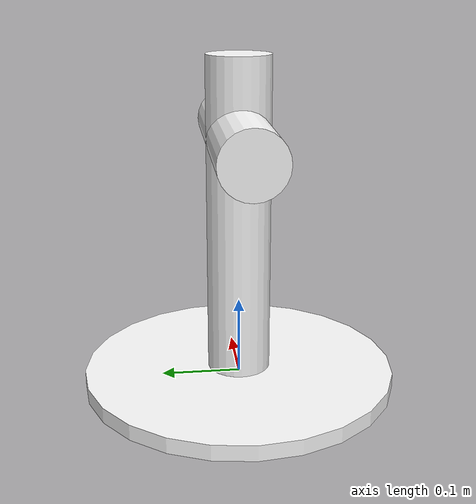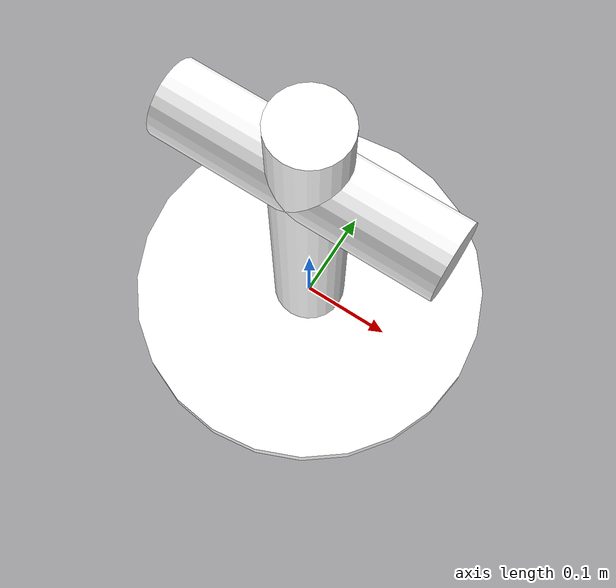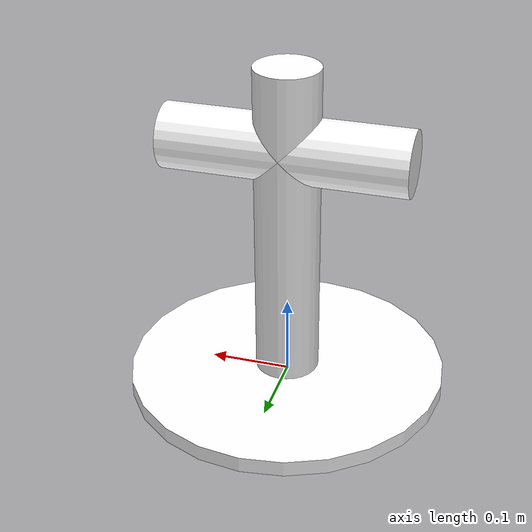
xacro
<?xml version="1.0"?>

<robot xmlns:xacro="http://www.ros.org/wiki/xacro"
       xmlns:sensor="http://playerstage.sourceforge.net/gazebo/xmlschema/#sensor"
       xmlns:controller="http://playerstage.sourceforge.net/gazebo/xmlschema/#controller"
       xmlns:interface="http://playerstage.sourceforge.net/gazebo/xmlschema/#interface"
       name="pan_tilt">

       <!-- robot properties -->
       <xacro:property name="base_link_radius" value="0.20" />
       <xacro:property name="base_link_length" value="0.02" />

       <xacro:property name="pan_link_radius" value="0.04" />
       <xacro:property name="pan_link_length" value="0.40" />

       <xacro:property name="tilt_link_radius" value="0.04" />
       <xacro:property name="tilt_link_length" value="0.30" />

       <!-- macros -->
       <xacro:macro name="geometry_cylinder" params="radius length">
              <geometry>
                     <cylinder radius="${radius}" length="${length}"/>
              </geometry>
       </xacro:macro>

       <xacro:macro name="material_white">
              <material name="white">
                     <color rgba="1.0 1.0 1.0 1.0"/>
              </material>
       </xacro:macro>

       <xacro:macro name="inertial_matrix" params="mass">
              <inertial>
                     <origin xyz="0.0 0.0 0.0" rpy="0.0 0.0 0.0"/>
                     <mass value="${mass}"/>
                     <inertia ixx="0.0" ixy="0.0" ixz="0.0"
                              iyy="0.0" iyz="0.0"
                              izz="0.0"/>
              </inertial>
	</xacro:macro>

       <!-- definition -->
       <link name="base_link">
              <visual name="base_link">
                     <origin xyz="0.0 0.0 0.0" rpy="0.0 0.0 0.0"/>
                     <xacro:geometry_cylinder radius="${base_link_radius}" length="${base_link_length}"/>
                     <xacro:material_white />
              </visual>
       </link>

       <joint name="pan_joint" type="continuous">
              <origin xyz="0.0 0.0 0.21" rpy="0.0 0.0 0.0"/>
              <parent link="base_link"/>
              <child link="pan_link"/>
              <axis xyz="0.0 0.0 1.0"/>
       </joint>

       <link name="pan_link">
              <xacro:inertial_matrix mass="1"/>
              <visual name="pan_link">
                     <origin xyz="0.0 0.0 0.0" rpy="0.0 0.0 0.0"/>
                     <xacro:geometry_cylinder radius="${pan_link_radius}" length="${pan_link_length}"/>
                     <xacro:material_white />
              </visual>
       </link>

       <joint name="tilt_joint" type="continuous">
              <origin xyz="0.0 0.0 0.10" rpy="0.0 1.5707963267948966 0.0"/>
              <parent link="pan_link"/>
              <child link="tilt_link"/>
              <axis xyz="0.0 0.0 1.0"/>
       </joint>

       <link name="tilt_link">
              <xacro:inertial_matrix mass="1"/>
              <visual name="tilt_link">
                     <origin xyz="0.0 0.0 0.0" rpy="0.0 0.0 0.0"/>
                     <xacro:geometry_cylinder radius="${tilt_link_radius}" length="${tilt_link_length}"/>
                     <xacro:material_white />
              </visual>
       </link>
</robot>
